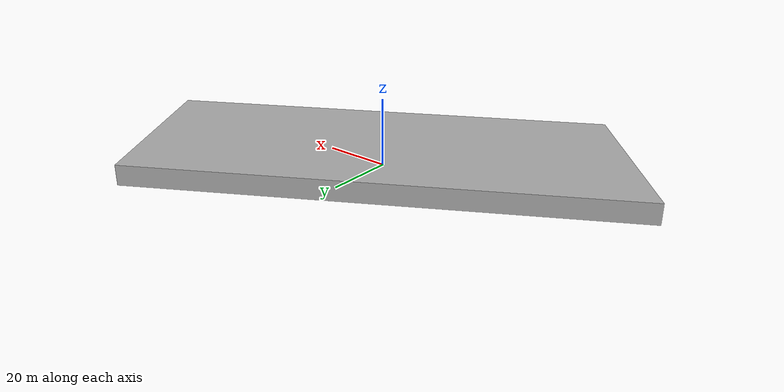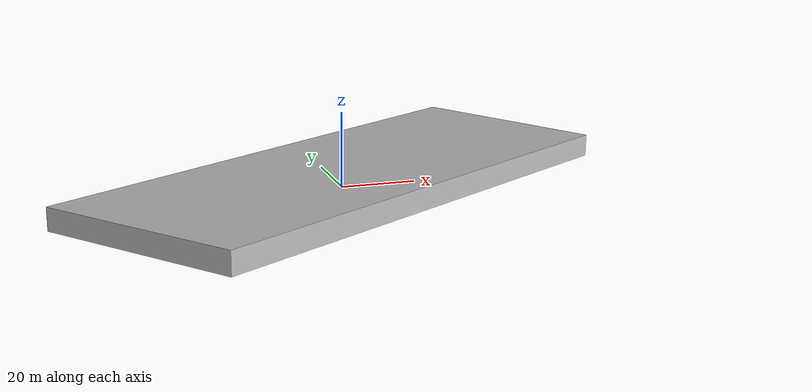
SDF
<?xml version="1.0" ?>
<sdf version="1.7">
  <model name="building_0058_assumed_a_subestacao">
    <static>true</static>
    <link name="building_link">
      <visual name="building_visual">
        <geometry>
          <mesh>
            <uri>model://building_0058_assumed_a_subestacao/meshes/construction_0058_assumed_A_Subestacao_h6m.obj</uri>
          </mesh>
        </geometry>
      </visual>
    <collision name="building_collision">
      <geometry>
        <mesh>
          <uri>model://building_0058_assumed_a_subestacao/meshes/construction_0058_assumed_A_Subestacao_h6m.obj</uri>
        </mesh>
      </geometry>
    </collision>
    </link>
  </model>
</sdf>
